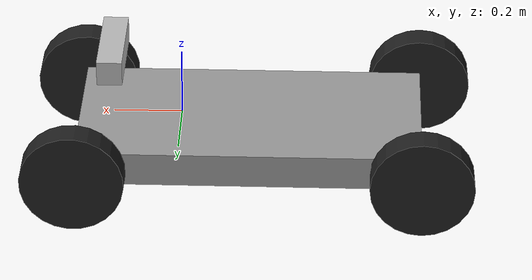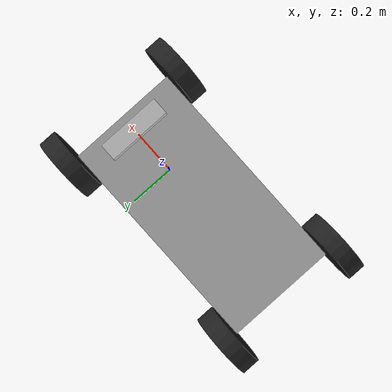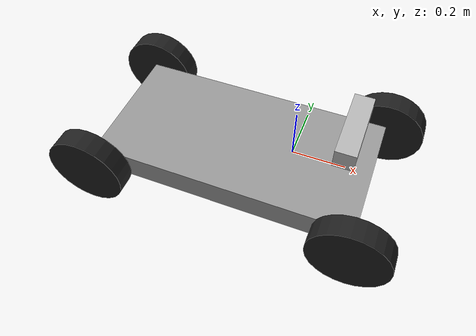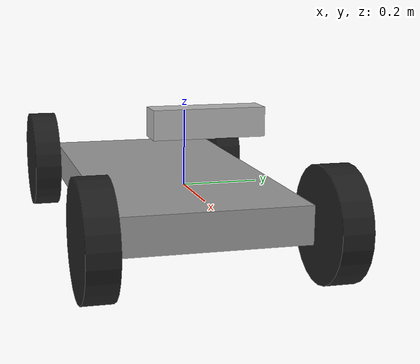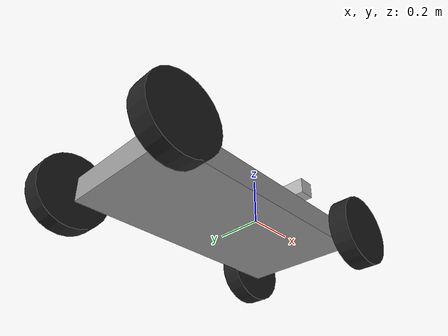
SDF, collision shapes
<?xml version='1.0'?>
<sdf version='1.6'>
  <model name='test'>
    <model name='cart_front_steer'>
      <link name='chassis'>
        <pose frame=''>0 0 0.15 0 -0 0</pose>
        <inertial>
          <pose frame=''>0.1 0 0 0 -0 0</pose>
          <mass>10</mass>
          <inertia>
            <ixx>0.216667</ixx>
            <iyy>0.841667</iyy>
            <izz>1.04167</izz>
            <ixy>0</ixy>
            <ixz>0</ixz>
            <iyz>0</iyz>
          </inertia>
        </inertial>
        <collision name='collision'>
          <geometry>
            <box>
              <size>1 0.5 0.1</size>
            </box>
          </geometry>
        </collision>
        <visual name='visual'>
          <geometry>
            <box>
              <size>1 0.5 0.1</size>
            </box>
          </geometry>
          <material>
            <script>
              <uri>file://media/materials/scripts/gazebo.material</uri>
              <name>Gazebo/Grey</name>
            </script>
          </material>
        </visual>
      </link>
      <link name='wheel_front_left'>
        <pose frame=''>0.5 0.298 0.15 -1.5708 -0.087266 0</pose>
        <inertial>
          <mass>0.5</mass>
          <inertia>
            <ixx>0.00307917</ixx>
            <iyy>0.00307917</iyy>
            <izz>0.005625</izz>
            <ixy>0</ixy>
            <ixz>0</ixz>
            <iyz>0</iyz>
          </inertia>
        </inertial>
        <collision name='collision'>
          <geometry>
            <cylinder>
              <radius>0.15</radius>
              <length>0.08</length>
            </cylinder>
          </geometry>
        </collision>
        <visual name='visual'>
          <geometry>
            <cylinder>
              <radius>0.15</radius>
              <length>0.08</length>
            </cylinder>
          </geometry>
          <material>
            <script>
              <uri>file://media/materials/scripts/gazebo.material</uri>
              <name>Gazebo/Black</name>
            </script>
          </material>
        </visual>
      </link>
      <joint name='wheel_front_left_steer_spin' type='universal'>
        <parent>chassis</parent>
        <child>wheel_front_left</child>
        <axis>
          <xyz>0 -1 0</xyz>
          <limit>
            <lower>-0.610865</lower>
            <upper>0.610865</upper>
          </limit>
          <use_parent_model_frame>0</use_parent_model_frame>
        </axis>
        <axis2>
          <xyz>0 0 1</xyz>
          <use_parent_model_frame>0</use_parent_model_frame>
        </axis2>
      </joint>
      <link name='wheel_front_right'>
        <pose frame=''>0.5 -0.298 0.15 -1.5708 -0.087266 0</pose>
        <inertial>
          <mass>0.5</mass>
          <inertia>
            <ixx>0.00307917</ixx>
            <iyy>0.00307917</iyy>
            <izz>0.005625</izz>
            <ixy>0</ixy>
            <ixz>0</ixz>
            <iyz>0</iyz>
          </inertia>
        </inertial>
        <collision name='collision'>
          <geometry>
            <cylinder>
              <radius>0.15</radius>
              <length>0.08</length>
            </cylinder>
          </geometry>
        </collision>
        <visual name='visual'>
          <geometry>
            <cylinder>
              <radius>0.15</radius>
              <length>0.08</length>
            </cylinder>
          </geometry>
          <material>
            <script>
              <uri>file://media/materials/scripts/gazebo.material</uri>
              <name>Gazebo/Black</name>
            </script>
          </material>
        </visual>
      </link>
      <joint name='wheel_front_right_steer_spin' type='universal'>
        <parent>chassis</parent>
        <child>wheel_front_right</child>
        <axis>
          <xyz>0 -1 0</xyz>
          <limit>
            <lower>-0.610865</lower>
            <upper>0.610865</upper>
          </limit>
          <use_parent_model_frame>0</use_parent_model_frame>
        </axis>
        <axis2>
          <xyz>0 0 1</xyz>
          <use_parent_model_frame>0</use_parent_model_frame>
        </axis2>
      </joint>
      <link name='wheel_rear_left'>
        <pose frame=''>-0.5 0.298 0.15 -1.5708 0 0</pose>
        <inertial>
          <mass>0.5</mass>
          <inertia>
            <ixx>0.00307917</ixx>
            <iyy>0.00307917</iyy>
            <izz>0.005625</izz>
            <ixy>0</ixy>
            <ixz>0</ixz>
            <iyz>0</iyz>
          </inertia>
        </inertial>
        <collision name='collision'>
          <geometry>
            <cylinder>
              <radius>0.15</radius>
              <length>0.08</length>
            </cylinder>
          </geometry>
        </collision>
        <visual name='visual'>
          <geometry>
            <cylinder>
              <radius>0.15</radius>
              <length>0.08</length>
            </cylinder>
          </geometry>
          <material>
            <script>
              <uri>file://media/materials/scripts/gazebo.material</uri>
              <name>Gazebo/Black</name>
            </script>
          </material>
        </visual>
      </link>
      <joint name='wheel_rear_left_spin' type='revolute'>
        <parent>chassis</parent>
        <child>wheel_rear_left</child>
        <axis>
          <xyz>0 0 1</xyz>
          <use_parent_model_frame>0</use_parent_model_frame>
          <limit>
            <lower>-1e+16</lower>
            <upper>1e+16</upper>
          </limit>
        </axis>
      </joint>
      <link name='wheel_rear_right'>
        <pose frame=''>-0.5 -0.298 0.15 -1.5708 0 0</pose>
        <inertial>
          <mass>0.5</mass>
          <inertia>
            <ixx>0.00307917</ixx>
            <iyy>0.00307917</iyy>
            <izz>0.005625</izz>
            <ixy>0</ixy>
            <ixz>0</ixz>
            <iyz>0</iyz>
          </inertia>
        </inertial>
        <collision name='collision'>
          <geometry>
            <cylinder>
              <radius>0.15</radius>
              <length>0.08</length>
            </cylinder>
          </geometry>
        </collision>
        <visual name='visual'>
          <geometry>
            <cylinder>
              <radius>0.15</radius>
              <length>0.08</length>
            </cylinder>
          </geometry>
          <material>
            <script>
              <uri>file://media/materials/scripts/gazebo.material</uri>
              <name>Gazebo/Black</name>
            </script>
          </material>
        </visual>
      </link>
      <joint name='wheel_rear_right_spin' type='revolute'>
        <parent>chassis</parent>
        <child>wheel_rear_right</child>
        <axis>
          <xyz>0 0 1</xyz>
          <use_parent_model_frame>0</use_parent_model_frame>
          <limit>
            <lower>-1e+16</lower>
            <upper>1e+16</upper>
          </limit>
        </axis>
      </joint>
      <pose frame=''>-0.2 -0.0 -0.2 0 -0 0</pose>
    </model>
    <model name='kinect'>
      <pose frame=''>0.2 0.0 0.2   0 -0 0</pose>
      <link name='link'>
        <inertial>
          <mass>0.1</mass>
        </inertial>
        <collision name='collision'>
          <geometry>
            <box>
              <size>0.073 0.276 0.072</size>
            </box>
          </geometry>
        </collision>
        <visual name='visual'>
          <geometry>
            <mesh>
              <uri>model://kinect/meshes/kinect.dae</uri>
            </mesh>
          </geometry>
        </visual>
        <sensor name='camera' type='depth'>
          <plugin name='camera_plugin' filename='libgazebo_ros_openni_kinect.so'>
            <baseline>0.2</baseline>
            <alwaysOn>1</alwaysOn>
            <updateRate>0.0</updateRate>
            <cameraName>camera_ir</cameraName>
            <imageTopicName>/camera/color/image_raw</imageTopicName>
            <cameraInfoTopicName>/camera/color/camera_info</cameraInfoTopicName>
            <depthImageTopicName>/camera/depth/image_raw</depthImageTopicName>
            <depthImageCameraInfoTopicName>/camera/depth/camera_info</depthImageCameraInfoTopicName>
            <pointCloudTopicName>/camera/depth/points</pointCloudTopicName>
            <frameName>camera_link</frameName>
            <pointCloudCutoff>0.5</pointCloudCutoff>
            <pointCloudCutoffMax>3.0</pointCloudCutoffMax>
            <distortionK1>0</distortionK1>
            <distortionK2>0</distortionK2>
            <distortionK3>0</distortionK3>
            <distortionT1>0</distortionT1>
            <distortionT2>0</distortionT2>
            <CxPrime>0</CxPrime>
            <Cx>0</Cx>
            <Cy>0</Cy>
            <focalLength>0</focalLength>
            <hackBaseline>0</hackBaseline>
          </plugin>
          <update_rate>20</update_rate>
          <camera name='__default__'>
            <horizontal_fov>1.0472</horizontal_fov>
            <image>
              <width>640</width>
              <height>480</height>
              <format>R8G8B8</format>
            </image>
            <clip>
              <near>0.05</near>
              <far>3</far>
            </clip>
          </camera>
        </sensor>
      </link>
    </model>
    <joint name='chassis_JOINT_1' type='fixed'>
      <parent>cart_front_steer::chassis</parent>
      <child>kinect::link</child>
      <pose frame=''>-0.38 0 0.2 0 -0 0</pose>
      <physics>
        <ode>
          <limit>
            <cfm>0</cfm>
            <erp>0.2</erp>
          </limit>
          <suspension>
            <cfm>0</cfm>
            <erp>0.2</erp>
          </suspension>
        </ode>
      </physics>
    </joint>
    <static>0</static>
    <allow_auto_disable>1</allow_auto_disable>
  </model>
</sdf>
